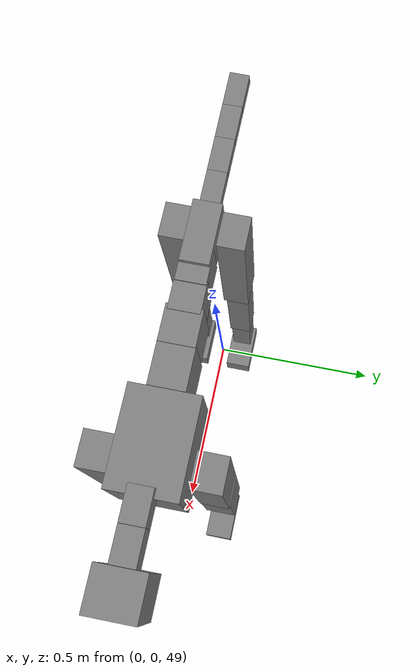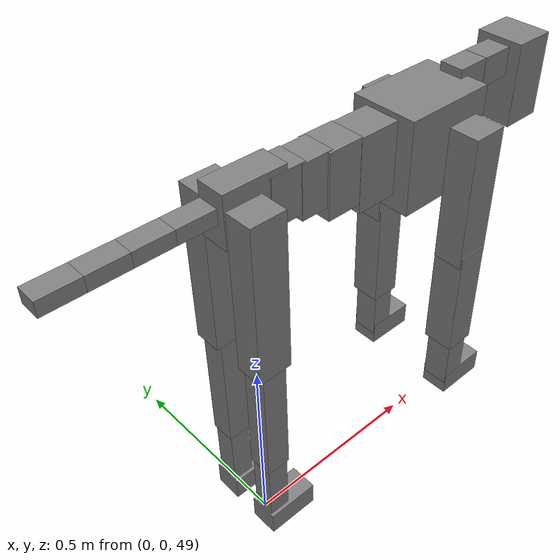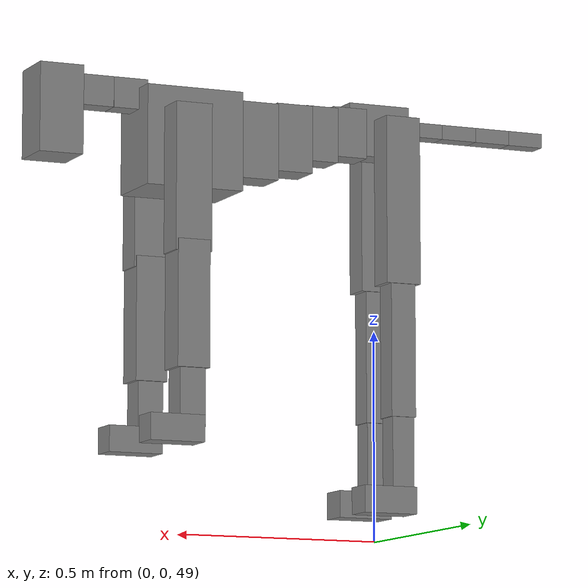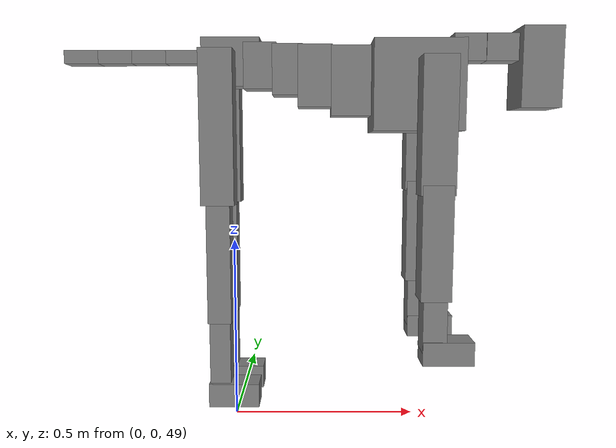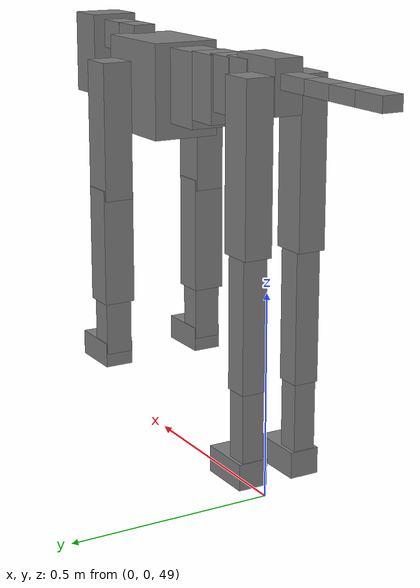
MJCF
<mujoco model="dog">

    <default>
        <joint armature="0.02" stiffness="1" damping="0.2" limited="true" />
        <geom condim="3" friction="1 0.05 0.05" margin="0.01" />
        <motor ctrllimited="true" ctrlrange="-1.0 1.0" forcelimited="true" gear="50" />
    </default>

    <compiler inertiafromgeom="true" angle="radian" />

    <option timestep="0.016" iterations="50" tolerance="1e-10" solver="Newton" jacobian="dense" cone="pyramidal" />

    <size nconmax="20000" njmax="60000" nstack="5000000" />
    <visual>
        <map force="0.1" zfar="30" />
        <rgba haze="0.15 0.25 0.35 1" />
        <quality shadowsize="2048" />
        <global offwidth="800" offheight="800" />
    </visual>

    <asset>
        <texture type="skybox" builtin="gradient" rgb1="0.3 0.5 0.7" rgb2="0 0 0" width="512" height="512" />
        <texture name="texplane" type="2d" builtin="checker" rgb1=".2 .3 .4" rgb2=".1 0.15 0.2" width="512" height="512" mark="cross" markrgb=".8 .8 .8" />
        <texture name="texgeom" type="cube" builtin="flat" mark="cross" width="127" height="1278" rgb1="0.8 0.6 0.4" rgb2="0.8 0.6 0.4" markrgb="1 1 1" random="0.01" />

        <material name="matplane" reflectance="0.3" texture="texplane" texrepeat="1 1" texuniform="true" />
        <material name="matgeom" texture="texgeom" texuniform="true" rgba="0.8 0.6 .4 1" />
    </asset>

    <worldbody>
        <geom name="floor" pos="0 0 0" size="0 0 .25" type="plane" material="matplane" condim="3" />

        <light directional="false" diffuse=".2 .2 .2" specular="0 0 0" pos="0 0 5" dir="0 0 -1" castshadow="false" />
        <light mode="targetbodycom" target="torso" directional="false" diffuse=".8 .8 .8" specular="0.3 0.3 0.3" pos="0 0 4.0" dir="0 0 -1" />

        <body name="root" pos="0 0 50">
            <freejoint name="root_1" />
            <geom type="box" pos="0 0 -0.02" size="0.0774  0.0358  0.063" density="2030" />

            <body name="spine1" pos="0.054 0 0">
                <joint name="spine1_y" axis="0 1 0" range="0 0.7" limited="true" />
                <geom type="box" pos="0.02375 0 -0.03" size="0.04375  0.0375  0.05985" density="2030" />

                <body name="spine2" pos="0.0612 0 0">
                    <joint name="spine2_y" axis="0 1 0" range="-0.15 0.15" limited="true" />
                    <geom type="box" pos="0.03555  0  -0.04" size="0.04055  0.039  0.06615" density="2030" />

                    <body name="spine3" pos="0.0730 0 0">
                        <joint name="spine3_y" axis="0 1 0" range="-0.15 0.15" limited="true" />
                        <geom type="box" pos="0.03555  0  -0.057" size="0.04555  0.0445  0.081" density="2030" />

                        <body name="spine4" pos="0.0780 0 0">
                            <joint name="spine4_y" axis="0 1 0" range="-0.15 0.15" limited="true" />
                            <geom type="box" pos="0.05265  0  -0.07" size="0.05265  0.045  0.09135" density="2030" />

                            <body name="torso" pos="0.1082 0 0">
                                <joint name="torso_y" axis="0 1 0" range="-0.15 0.15" limited="true" />
                                <geom type="box" pos="0.11925  0  -0.085" size="0.11925  0.085  0.11745" density="2030" />

                                <body name="neck1" pos="0.2160  0   0.0180">
                                    <joint name="neck1_y" axis="0 1 0" range="-1.2  -1" limited="true" />
                                    <geom type="box" pos="0.0423  0  0" size="0.0423  0.03  0.036" density="2325" />

                                    <body name="neck2" pos="0.0853  0  0">
                                        <joint name="neck2_y" axis="0 1 0" range="0.1  0" limited="true" />
                                        <geom type="box" pos="0.0423  0  0" size="0.0423  0.03  0.036" density="2325" />

                                        <body name="head" pos="0.0853  0  0">
                                            <joint name="head_y" axis="0 1 0" range="-0.3  -0.2" limited="true" />
                                            <geom type="box" pos="0.0531  0  -0.055" size="0.0531  0.06  0.1044" density="4030" />

                                        </body>
                                    </body>
                                </body>

                                <body name="front_shoulder" pos="0.156  0   -0.0480">
                                    <joint name="front_shoulder_y" axis="0 1 0" range="-1 1.5" limited="true" />
                                    <geom type="box" pos="0 0.13 -0.1457" size="0.0441  0.0377  0.1723" density="1158" />
                                    <geom type="box" pos="0 -0.13 -0.1457" size="0.0441  0.0377  0.1723" density="1158" />

                                    <body name="front_elbow" pos="0  0  -0.2914">
                                        <joint name="front_elbow_y" axis="0 1 0" range="-2 0" limited="true" />
                                        <geom type="box" pos="0 0.13 -0.1474" size="0.0394  0.0403  0.1474" density="1081" />
                                        <geom type="box" pos="0 -0.13 -0.1474" size="0.0394  0.0403  0.1474" density="1081" />

                                        <body name="front_wrist" pos="0  0  -0.2949">
                                            <joint name="front_wrist_y" axis="0 1 0" range="-0.2 0" limited="true" />
                                            <geom type="box" pos="0 0.13 -0.0610" size="0.0310  0.0345  0.0741" density="1664" />
                                            <geom type="box" pos="0 -0.13 -0.0610" size="0.0310  0.0345  0.0741" density="1664" />

                                            <body name="front_finger_end" pos="0  0  -0.1220">
                                                <joint name="front_finger_y" axis="0 1 0" range="-0.4 1" limited="true" />
                                                <geom type="box" pos="0.0362  0.13  -0.0162" size="0.0664  0.0362  0.0312" density="1515" />
                                                <geom type="box" pos="0.0362  -0.13  -0.0162" size="0.0664  0.0362  0.0312" density="1515" />

                                            </body>

                                        </body>
                                    </body>
                                </body>

                            </body>
                        </body>
                    </body>
                </body>
            </body>

            <body name="back_hip" pos="-0.03 0 -0.018">
                <joint name="back_hip_y" axis="0 1 0" range="-1.5 0.3" limited="true" />
                <geom type="box" pos="0 0.07 -0.1776" size="0.0437  0.0343  0.2004" density="1154" />
                <geom type="box" pos="0 -0.07 -0.1776" size="0.0437  0.0343  0.2004" density="1154" />

                <body name="back_knee" pos="0  0  -0.3552">
                    <joint name="back_knee_y" axis="0 1 0" range="0 2.8" limited="true" />
                    <geom type="box" pos="0 0.07 -0.1615" size="0.0312  0.0307  0.1770" density="1227" />
                    <geom type="box" pos="0 -0.07 -0.1615" size="0.0312  0.0307  0.1770" density="1227" />

                    <body name="back_ankle" pos="0  0  -0.3229">
                        <joint name="back_ankle_y" axis="0 1 0" range="-2.2 0" limited="true" />
                        <geom type="box" pos="0 0.07 -0.0977" size="0.0276  0.0276  0.1089" density="1284" />
                        <geom type="box" pos="0 -0.07 -0.0977" size="0.0276  0.0276  0.1089" density="1284" />

                        <body name="back_toe_end" pos="0  0  -0.1954">
                            <joint name="back_toe_y" axis="0 1 0" range="-0.4 1" limited="true" />
                            <geom type="box" pos="0.0366  0.07  -0.0169" size="0.0672  0.0366  0.0319" density="1515" />
                            <geom type="box" pos="0.0366  -0.07  -0.0169" size="0.0672  0.0366  0.0319" density="1515" />

                        </body>
                    </body>
                </body>
            </body>

            <body name="tail1" pos="-0.074 0 -0.006">
                <joint name="tail1_y" axis="0 1 0" range="-0.2 0.2" limited="true" />
                <geom type="box" pos="-0.0536  0  0" size="0.045  0.025  0.0175" density="1587" />

                <body name="tail2" pos="-0.09 0 0">
                    <joint name="tail2_y" axis="0 1 0" range="-0.2 0.2" limited="true" />
                    <geom type="box" pos="-0.0536  0  0" size="0.045  0.025  0.0175" density="1587" />

                    <body name="tail3" pos="-0.09 0 0">
                        <joint name="tail3_y" axis="0 1 0" range="-0.2 0.2" limited="true" />
                        <geom type="box" pos="-0.0536  0  0" size="0.045  0.025  0.0175" density="1587" />

                        <body name="tail4" pos="-0.09 0 0">
                            <joint name="tail4_y" axis="0 1 0" range="-0.2 0.2" limited="true" />
                            <geom type="box" pos="-0.0536  0  0" size="0.045  0.025  0.0175" density="1587" />

                        </body>
                    </body>
                </body>
            </body>
        </body>
    </worldbody>

    <actuator>
        <motor joint="spine1_y" forcerange="-150 150     " />
        <motor joint="spine2_y" forcerange="-150 150     " />
        <motor joint="spine3_y" forcerange="-150 150     " />
        <motor joint="spine4_y" forcerange="-150 150     " />
        <motor joint="torso_y" forcerange="-150 150     " />
        <motor joint="neck1_y" forcerange="-100 100       " />
        <motor joint="neck2_y" forcerange="-100 100       " />
        <motor joint="head_y" forcerange="-150 150       " />
        <motor joint="front_shoulder_y" forcerange="-183.36 167.97" />
        <motor joint="front_elbow_y" forcerange="-198.21 195.02" />
        <motor joint="front_wrist_y" forcerange="-126.57 149.16" />
        <motor joint="front_finger_y" forcerange="-92.08 61.22" />
        <motor joint="back_hip_y" forcerange="-337.44 319.36" />
        <motor joint="back_knee_y" forcerange="-335.38 311.22" />
        <motor joint="back_angle_y" forcerange="-187.83 154.24" />
        <motor joint="back_toe_y" forcerange="-119.47 93.66" />
        <motor joint="tail1_y" forcerange="-50 50     " />
        <motor joint="tail2_y" forcerange="-50 50     " />
        <motor joint="tail3_y" forcerange="-50 50     " />
        <motor joint="tail4_y" forcerange="-50 50     " />
    </actuator>
</mujoco>
